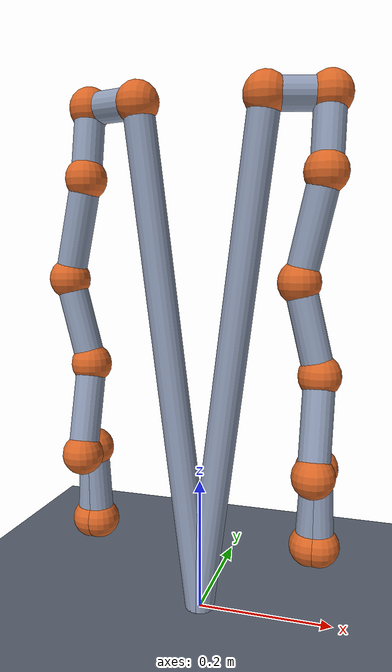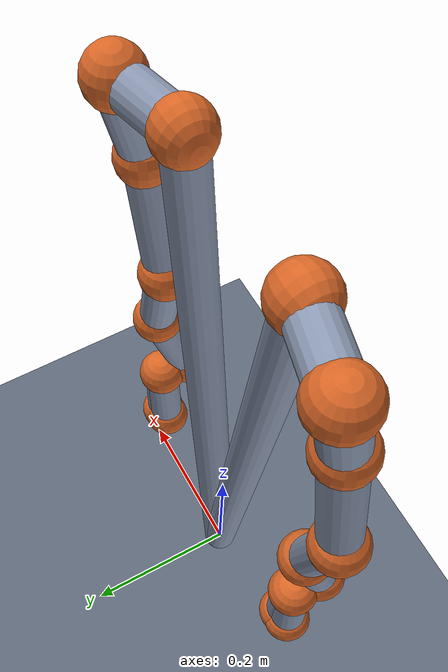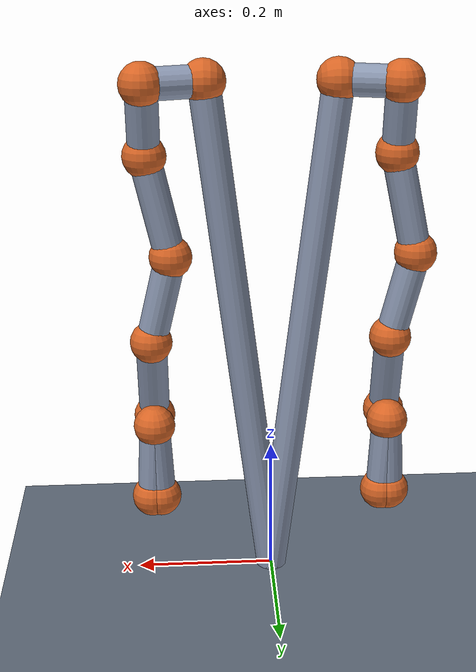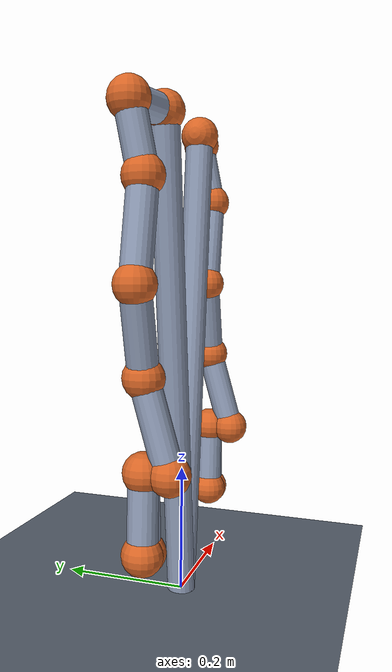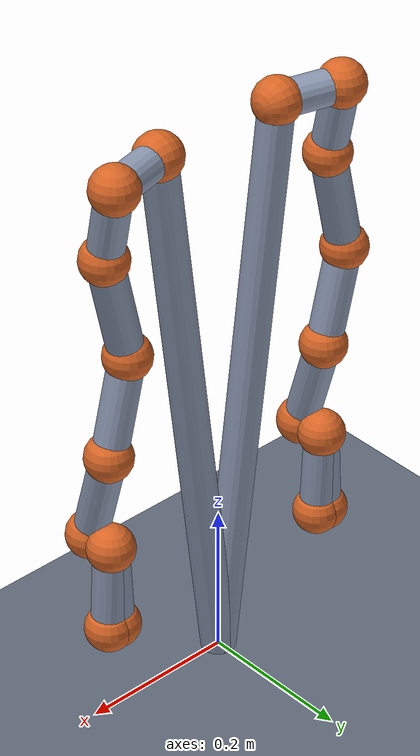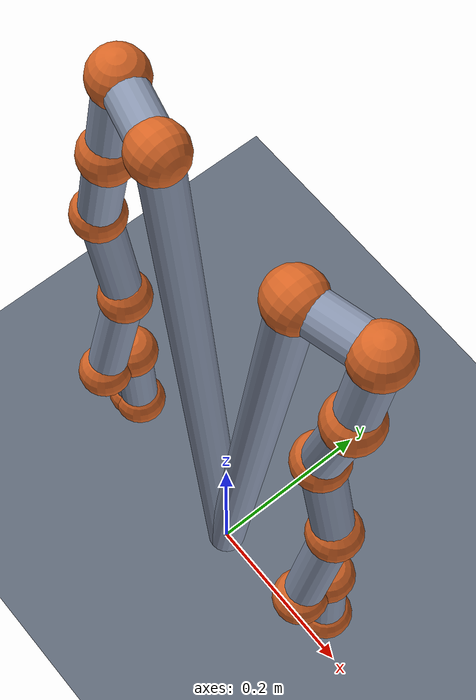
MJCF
<mujoco model="oa_bimanual_scene">
  <include file="oa_bimanual_runtime.xml"/>
  <visual>
    <headlight ambient="0.4 0.4 0.4" diffuse="0.6 0.6 0.6"/>
  </visual>
  <asset>
    <texture type="skybox" builtin="gradient" rgb1="0.5 0.7 0.9" rgb2="0.9 0.9 1" width="64" height="64"/>
    <texture name="floor" type="2d" builtin="checker" rgb1="0.32 0.36 0.42" rgb2="0.42 0.46 0.52" width="256" height="256"/>
    <material name="floor" texture="floor" texrepeat="6 6"/>
  </asset>
  <worldbody>
    <light pos="0 0 3" dir="0 0 -1"/>
    <geom name="floor" type="plane" size="3 3 0.1" material="floor"/>
  </worldbody>
</mujoco>

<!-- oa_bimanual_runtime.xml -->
<mujoco model="openarmx">
  <compiler angle="radian" />
  <asset>
    </asset>
  <worldbody>
    <body name="openarmx_robot_yaw_root" euler="0 0 -1.57079632679">
      <body name="openarmx_left_link1" pos="0 0.089 0.735" quat="0.707105 -0.707108 0 0">
        <inertial pos="0.004452 2.5e-05 0.073323" quat="0.999503 0.000644393 -0.0315003 0.00114209" mass="1.68876" diaginertia="0.00346919 0.002551 0.00190982" />
        <joint name="openarmx_left_joint1" pos="0 0 0" axis="0 0 1" range="-3.3444 0.905604" actuatorfrcrange="-120 120" damping="18.0" armature="0.03" frictionloss="0.15" />
        <body name="openarmx_left_link2" pos="-0.0205 0 0.081" quat="0.707105 -0.707108 0 0">
          <inertial pos="-0.003787 -0.000221 0.04901" quat="0.986716 -0.00145381 -0.161354 -0.0188355" mass="0.396704" diaginertia="0.000891196 0.000821946 0.000327857" />
          <joint name="openarmx_left_joint2" pos="0 0 0" axis="-1 0 0" range="-3.2708 0.129204" actuatorfrcrange="-120 120" damping="18.0" armature="0.03" frictionloss="0.15" />
          <body name="openarmx_left_link3" pos="0.02 0 0.099">
            <inertial pos="-0.000828 -0.000236 0.083336" quat="0.946133 0.00530809 0.00424656 -0.323707" mass="2.49278" diaginertia="0.0103641 0.0103322 0.00300164" />
            <joint name="openarmx_left_joint3" pos="0 0 0" axis="0 0 1" range="-1.57 1.57" actuatorfrcrange="-60 60" damping="18.0" armature="0.03" frictionloss="0.15" />
            <body name="openarmx_left_link4" pos="0 0.031002 0.14181">
              <inertial pos="-0.002591 -0.030135 0.07147" quat="0.999683 -0.0233783 -0.00922341 -0.00115143" mass="0.779755" diaginertia="0.00201543 0.00162187 0.000765704" />
              <joint name="openarmx_left_joint4" pos="0 0 0" axis="0 1 0" range="0 1.8" actuatorfrcrange="-60 60" damping="18.0" armature="0.03" frictionloss="0.15" />
              <body name="openarmx_left_link5" pos="0 -0.0309 0.126">
                <inertial pos="-0.002256 -0.000305 0.0533" quat="0.714458 -0.0122081 -0.0110113 0.699485" mass="0.687255" diaginertia="0.00106611 0.000831256 0.000495637" />
                <joint name="openarmx_left_joint5" pos="0 0 0" axis="0 0 1" range="-1.5 1.5" actuatorfrcrange="-14 14" damping="18.0" armature="0.03" frictionloss="0.15" />
                <body name="openarmx_left_link6" pos="0.037426 0 0.131">
                  <inertial pos="-0.03564 0.005114 -0.003582" quat="0.945265 0.038546 0.187709 -0.26411" mass="0.384836" diaginertia="0.000317632 0.000265263 0.000212105" />
                  <joint name="openarmx_left_joint6" pos="0 0 0" axis="1 0 0" range="-0.75 0.75" actuatorfrcrange="-14 14" damping="18.0" armature="0.03" frictionloss="0.15" />
                  <body name="openarmx_left_link7" pos="-0.0375 0 0">
                    <inertial pos="0.000153865 -0.0365798 0.0698705" quat="0.471362 0.881718 -0.0189266 0.00575458" mass="0.974972" diaginertia="0.00476254 0.00404439 0.000991057" />
                    <joint name="openarmx_left_joint7" pos="0 0 0" axis="0 -1 0" range="-1.4 1.4" actuatorfrcrange="-14 14" damping="18.0" armature="0.03" frictionloss="0.15" />
                    <body name="openarmx_left_right_finger" pos="0 -0.006 0.1151">
                      <inertial pos="0.0064528 -0.01702 0.0219685" mass="0.0360255" diaginertia="2.375e-06 2.375e-06 7.5e-07" />
                      <joint name="openarmx_left_finger_joint1" pos="0 0 0" axis="0 -1 0" type="slide" range="0 0.044" actuatorfrcrange="-333 333" damping="2.0" armature="0.002" frictionloss="0.02" />
                      <geom type="sphere" size="0.030" contype="0" conaffinity="0" group="1" rgba="0.85 0.4 0.15 1" />
                    </body>
                    <body name="openarmx_left_left_finger" pos="0 0.006 0.1151">
                      <inertial pos="0.0064528 0.01702 0.0219685" mass="0.0360255" diaginertia="2.375e-06 2.375e-06 7.5e-07" />
                      <joint name="openarmx_left_finger_joint2" pos="0 0 0" axis="0 1 0" type="slide" range="0 0.044" actuatorfrcrange="-333 333" damping="2.0" armature="0.002" frictionloss="0.02" />
                      <geom type="sphere" size="0.030" contype="0" conaffinity="0" group="1" rgba="0.85 0.4 0.15 1" />
                    </body>
                    <geom type="capsule" fromto="0 0 0 0.0 -0.006 0.1151" size="0.022" contype="0" conaffinity="0" group="1" rgba="0.55 0.6 0.7 1" />
                    <geom type="capsule" fromto="0 0 0 0.0 0.006 0.1151" size="0.022" contype="0" conaffinity="0" group="1" rgba="0.55 0.6 0.7 1" />
                    <geom type="sphere" size="0.030" contype="0" conaffinity="0" group="1" rgba="0.85 0.4 0.15 1" />
                  </body>
                  <geom type="capsule" fromto="0 0 0 -0.0375 0.0 0.0" size="0.022" contype="0" conaffinity="0" group="1" rgba="0.55 0.6 0.7 1" />
                  <geom type="sphere" size="0.030" contype="0" conaffinity="0" group="1" rgba="0.85 0.4 0.15 1" />
                </body>
                <geom type="capsule" fromto="0 0 0 0.037426 0.0 0.131" size="0.022" contype="0" conaffinity="0" group="1" rgba="0.55 0.6 0.7 1" />
                <geom type="sphere" size="0.030" contype="0" conaffinity="0" group="1" rgba="0.85 0.4 0.15 1" />
              </body>
              <geom type="capsule" fromto="0 0 0 0.0 -0.0309 0.126" size="0.022" contype="0" conaffinity="0" group="1" rgba="0.55 0.6 0.7 1" />
              <geom type="sphere" size="0.030" contype="0" conaffinity="0" group="1" rgba="0.85 0.4 0.15 1" />
            </body>
            <geom type="capsule" fromto="0 0 0 0.0 0.031002 0.14181" size="0.022" contype="0" conaffinity="0" group="1" rgba="0.55 0.6 0.7 1" />
            <geom type="sphere" size="0.030" contype="0" conaffinity="0" group="1" rgba="0.85 0.4 0.15 1" />
          </body>
          <geom type="capsule" fromto="0 0 0 0.02 0.0 0.099" size="0.022" contype="0" conaffinity="0" group="1" rgba="0.55 0.6 0.7 1" />
          <geom type="sphere" size="0.030" contype="0" conaffinity="0" group="1" rgba="0.85 0.4 0.15 1" />
        </body>
        <geom type="capsule" fromto="0 0 0 -0.0205 0.0 0.081" size="0.022" contype="0" conaffinity="0" group="1" rgba="0.55 0.6 0.7 1" />
        <geom type="sphere" size="0.030" contype="0" conaffinity="0" group="1" rgba="0.85 0.4 0.15 1" />
      </body>
      <body name="openarmx_right_link1" pos="0 -0.089 0.735" quat="0.707105 0.707108 0 0">
        <inertial pos="0.004452 -2.5e-05 0.073323" quat="0.999503 0.000644393 -0.0315003 0.00114209" mass="1.68876" diaginertia="0.00346919 0.002551 0.00190982" />
        <joint name="openarmx_right_joint1" pos="0 0 0" axis="0 0 1" range="-1.25 3" actuatorfrcrange="-120 120" damping="18.0" armature="0.03" frictionloss="0.15" />
        <body name="openarmx_right_link2" pos="-0.0205 0 0.081" quat="0.707105 0.707108 0 0">
          <inertial pos="-0.003787 0.000221 0.04901" quat="0.986716 -0.00145381 -0.161354 -0.0188355" mass="0.396704" diaginertia="0.000891196 0.000821946 0.000327857" />
          <joint name="openarmx_right_joint2" pos="0 0 0" axis="-1 0 0" range="-0.129204 3.2708" actuatorfrcrange="-120 120" damping="18.0" armature="0.03" frictionloss="0.15" />
          <body name="openarmx_right_link3" pos="0.02 0 0.099">
            <inertial pos="-0.000828 0.000236 0.083336" quat="0.946133 0.00530809 0.00424656 -0.323707" mass="2.49278" diaginertia="0.0103641 0.0103322 0.00300164" />
            <joint name="openarmx_right_joint3" pos="0 0 0" axis="0 0 1" range="-1.57 1.57" actuatorfrcrange="-60 60" damping="18.0" armature="0.03" frictionloss="0.15" />
            <body name="openarmx_right_link4" pos="0 0.031002 0.14181">
              <inertial pos="-0.002591 -0.030135 0.07147" quat="0.999683 -0.0233783 -0.00922341 -0.00115143" mass="0.779755" diaginertia="0.00201543 0.00162187 0.000765704" />
              <joint name="openarmx_right_joint4" pos="0 0 0" axis="0 1 0" range="0 1.8" actuatorfrcrange="-60 60" damping="18.0" armature="0.03" frictionloss="0.15" />
              <body name="openarmx_right_link5" pos="0 -0.0309 0.126">
                <inertial pos="-0.002256 0.000305 0.0533" quat="0.714458 -0.0122081 -0.0110113 0.699485" mass="0.687255" diaginertia="0.00106611 0.000831256 0.000495637" />
                <joint name="openarmx_right_joint5" pos="0 0 0" axis="0 0 1" range="-1.5 1.5" actuatorfrcrange="-14 14" damping="18.0" armature="0.03" frictionloss="0.15" />
                <body name="openarmx_right_link6" pos="0.037426 0 0.131">
                  <inertial pos="-0.03564 -0.005114 -0.003582" quat="0.945265 0.038546 0.187709 -0.26411" mass="0.384836" diaginertia="0.000317632 0.000265263 0.000212105" />
                  <joint name="openarmx_right_joint6" pos="0 0 0" axis="1 0 0" range="-0.75 0.75" actuatorfrcrange="-14 14" damping="18.0" armature="0.03" frictionloss="0.15" />
                  <body name="openarmx_right_link7" pos="-0.0375 0 0">
                    <inertial pos="0.000153865 -0.0338517 0.0698705" quat="0.480064 0.877024 -0.0182521 0.00578127" mass="0.974972" diaginertia="0.00494981 0.00422951 0.000993346" />
                    <joint name="openarmx_right_joint7" pos="0 0 0" axis="0 1 0" range="-1.4 1.4" actuatorfrcrange="-14 14" damping="18.0" armature="0.03" frictionloss="0.15" />
                    <body name="openarmx_right_right_finger" pos="0 -0.006 0.1151">
                      <inertial pos="0.0064528 -0.01702 0.0219685" mass="0.0360255" diaginertia="2.375e-06 2.375e-06 7.5e-07" />
                      <joint name="openarmx_right_finger_joint1" pos="0 0 0" axis="0 -1 0" type="slide" range="0 0.044" actuatorfrcrange="-333 333" damping="2.0" armature="0.002" frictionloss="0.02" />
                      <geom type="sphere" size="0.030" contype="0" conaffinity="0" group="1" rgba="0.85 0.4 0.15 1" />
                    </body>
                    <body name="openarmx_right_left_finger" pos="0 0.006 0.1151">
                      <inertial pos="0.0064528 0.01702 0.0219685" mass="0.0360255" diaginertia="2.375e-06 2.375e-06 7.5e-07" />
                      <joint name="openarmx_right_finger_joint2" pos="0 0 0" axis="0 1 0" type="slide" range="0 0.044" actuatorfrcrange="-333 333" damping="2.0" armature="0.002" frictionloss="0.02" />
                      <geom type="sphere" size="0.030" contype="0" conaffinity="0" group="1" rgba="0.85 0.4 0.15 1" />
                    </body>
                    <geom type="capsule" fromto="0 0 0 0.0 -0.006 0.1151" size="0.022" contype="0" conaffinity="0" group="1" rgba="0.55 0.6 0.7 1" />
                    <geom type="capsule" fromto="0 0 0 0.0 0.006 0.1151" size="0.022" contype="0" conaffinity="0" group="1" rgba="0.55 0.6 0.7 1" />
                    <geom type="sphere" size="0.030" contype="0" conaffinity="0" group="1" rgba="0.85 0.4 0.15 1" />
                  </body>
                  <geom type="capsule" fromto="0 0 0 -0.0375 0.0 0.0" size="0.022" contype="0" conaffinity="0" group="1" rgba="0.55 0.6 0.7 1" />
                  <geom type="sphere" size="0.030" contype="0" conaffinity="0" group="1" rgba="0.85 0.4 0.15 1" />
                </body>
                <geom type="capsule" fromto="0 0 0 0.037426 0.0 0.131" size="0.022" contype="0" conaffinity="0" group="1" rgba="0.55 0.6 0.7 1" />
                <geom type="sphere" size="0.030" contype="0" conaffinity="0" group="1" rgba="0.85 0.4 0.15 1" />
              </body>
              <geom type="capsule" fromto="0 0 0 0.0 -0.0309 0.126" size="0.022" contype="0" conaffinity="0" group="1" rgba="0.55 0.6 0.7 1" />
              <geom type="sphere" size="0.030" contype="0" conaffinity="0" group="1" rgba="0.85 0.4 0.15 1" />
            </body>
            <geom type="capsule" fromto="0 0 0 0.0 0.031002 0.14181" size="0.022" contype="0" conaffinity="0" group="1" rgba="0.55 0.6 0.7 1" />
            <geom type="sphere" size="0.030" contype="0" conaffinity="0" group="1" rgba="0.85 0.4 0.15 1" />
          </body>
          <geom type="capsule" fromto="0 0 0 0.02 0.0 0.099" size="0.022" contype="0" conaffinity="0" group="1" rgba="0.55 0.6 0.7 1" />
          <geom type="sphere" size="0.030" contype="0" conaffinity="0" group="1" rgba="0.85 0.4 0.15 1" />
        </body>
        <geom type="capsule" fromto="0 0 0 -0.0205 0.0 0.081" size="0.022" contype="0" conaffinity="0" group="1" rgba="0.55 0.6 0.7 1" />
        <geom type="sphere" size="0.030" contype="0" conaffinity="0" group="1" rgba="0.85 0.4 0.15 1" />
      </body>
      <geom type="capsule" fromto="0 0 0 0.0 0.089 0.735" size="0.022" contype="0" conaffinity="0" group="1" rgba="0.55 0.6 0.7 1" />
      <geom type="capsule" fromto="0 0 0 0.0 -0.089 0.735" size="0.022" contype="0" conaffinity="0" group="1" rgba="0.55 0.6 0.7 1" />
    </body>
  </worldbody>
  <actuator>
    <motor name="m_openarmx_left_joint1" joint="openarmx_left_joint1" gear="1" ctrlrange="-120.0 120.0" />
    <motor name="m_openarmx_left_joint2" joint="openarmx_left_joint2" gear="1" ctrlrange="-120.0 120.0" />
    <motor name="m_openarmx_left_joint3" joint="openarmx_left_joint3" gear="1" ctrlrange="-60.0 60.0" />
    <motor name="m_openarmx_left_joint4" joint="openarmx_left_joint4" gear="1" ctrlrange="-60.0 60.0" />
    <motor name="m_openarmx_left_joint5" joint="openarmx_left_joint5" gear="1" ctrlrange="-14.0 14.0" />
    <motor name="m_openarmx_left_joint6" joint="openarmx_left_joint6" gear="1" ctrlrange="-14.0 14.0" />
    <motor name="m_openarmx_left_joint7" joint="openarmx_left_joint7" gear="1" ctrlrange="-14.0 14.0" />
    <motor name="m_openarmx_right_joint1" joint="openarmx_right_joint1" gear="1" ctrlrange="-120.0 120.0" />
    <motor name="m_openarmx_right_joint2" joint="openarmx_right_joint2" gear="1" ctrlrange="-120.0 120.0" />
    <motor name="m_openarmx_right_joint3" joint="openarmx_right_joint3" gear="1" ctrlrange="-60.0 60.0" />
    <motor name="m_openarmx_right_joint4" joint="openarmx_right_joint4" gear="1" ctrlrange="-60.0 60.0" />
    <motor name="m_openarmx_right_joint5" joint="openarmx_right_joint5" gear="1" ctrlrange="-14.0 14.0" />
    <motor name="m_openarmx_right_joint6" joint="openarmx_right_joint6" gear="1" ctrlrange="-14.0 14.0" />
    <motor name="m_openarmx_right_joint7" joint="openarmx_right_joint7" gear="1" ctrlrange="-14.0 14.0" />
  </actuator>
</mujoco>
